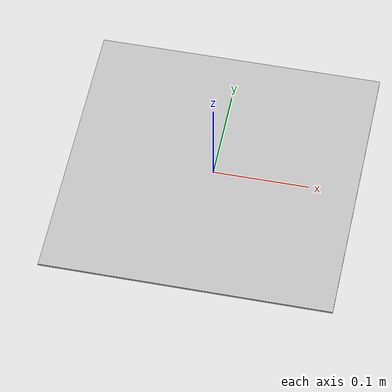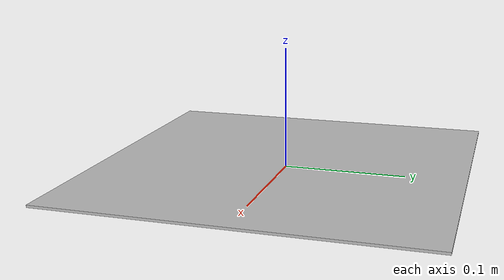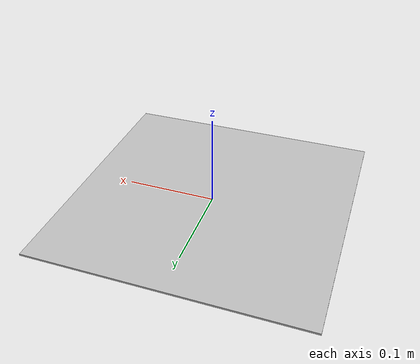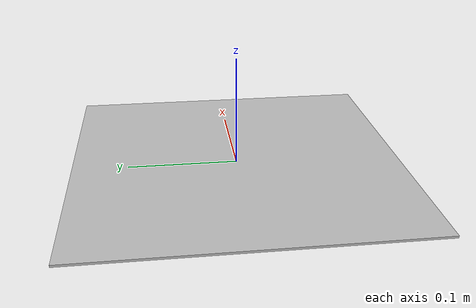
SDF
<?xml version="1.0" encoding="UTF-8"?>
<sdf version='1.9'>
  <model name='aruco105'>
    <static>true</static>
    <pose>0 0 0.001 0 0 0</pose>
    <link name='base_link'>
      <visual name='visual'>
	<geometry>
	  <mesh>
	    <uri>model://aruco105/aruco105.dae</uri>
	  </mesh>
	</geometry>
      </visual>
    </link>
  </model>
</sdf>
